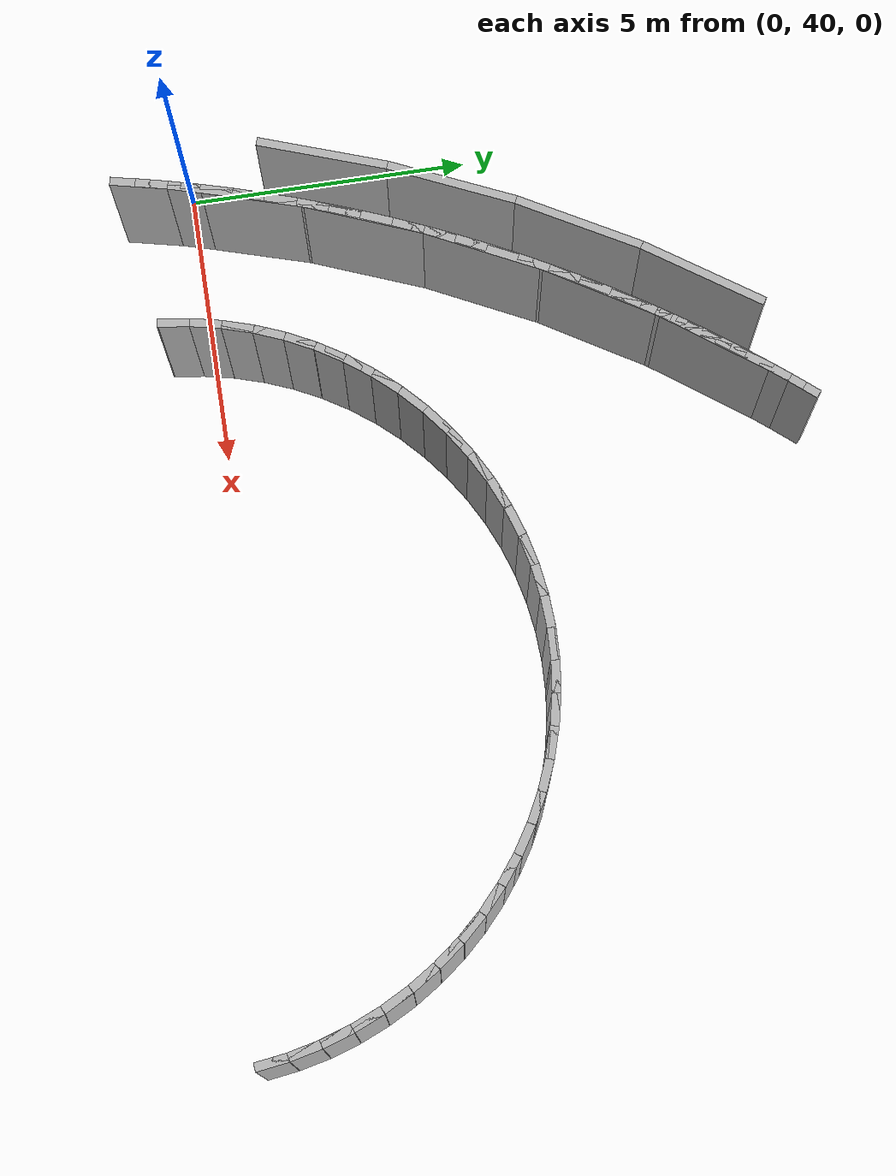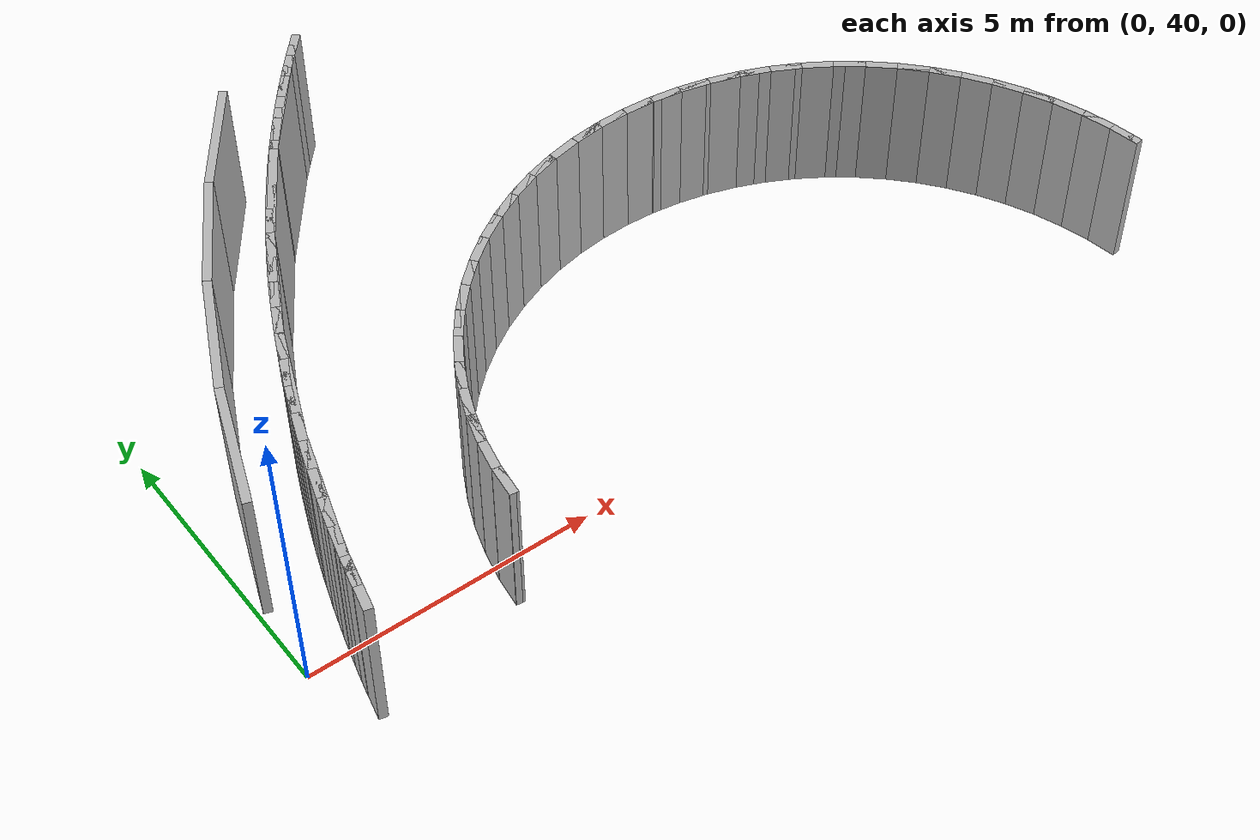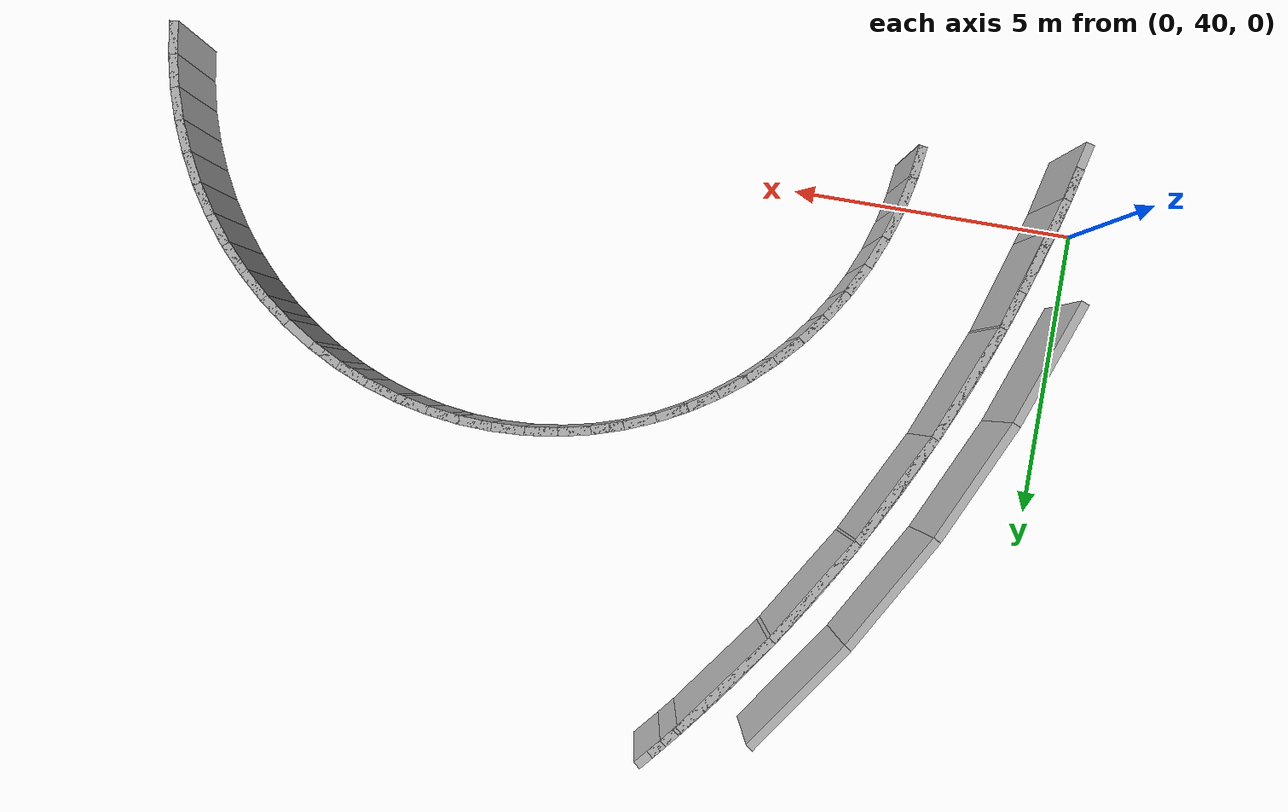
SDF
<sdf version="1.6">
 <model name="sps_2304">
  <static>1</static>
  <allow_auto_disable>0</allow_auto_disable>
  <link name="Wall5300">
   <collision name="collision"><geometry><box><size>0.549618 0.15 2.5</size></box></geometry></collision>
   <visual name="visual">
    <geometry><box><size>0.549618 0.15 2.5</size></box></geometry>
    <transparency>0.0</transparency>
   </visual>
   <pose>13.3285 43.681 1.25 0 0 -0.654517</pose>
  </link>
  <link name="Wall5301">
   <collision name="collision"><geometry><box><size>0.549667 0.15 2.5</size></box></geometry></collision>
   <visual name="visual">
    <geometry><box><size>0.549667 0.15 2.5</size></box></geometry>
    <transparency>0.0</transparency>
   </visual>
   <pose>13.7491 43.328 1.25 0 0 -0.741886</pose>
  </link>
  <link name="Wall5302">
   <collision name="collision"><geometry><box><size>0.549638 0.15 2.5</size></box></geometry></collision>
   <visual name="visual">
    <geometry><box><size>0.549638 0.15 2.5</size></box></geometry>
    <transparency>0.0</transparency>
   </visual>
   <pose>14.1373 42.9396 1.25 0 0 -0.829463</pose>
  </link>
  <link name="Wall5303">
   <collision name="collision"><geometry><box><size>0.549652 0.15 2.5</size></box></geometry></collision>
   <visual name="visual">
    <geometry><box><size>0.549652 0.15 2.5</size></box></geometry>
    <transparency>0.0</transparency>
   </visual>
   <pose>14.49 42.5188 1.25 0 0 -0.916746</pose>
  </link>
  <link name="Wall5304">
   <collision name="collision"><geometry><box><size>0.54959 0.15 2.5</size></box></geometry></collision>
   <visual name="visual">
    <geometry><box><size>0.54959 0.15 2.5</size></box></geometry>
    <transparency>0.0</transparency>
   </visual>
   <pose>14.8049 42.0689 1.25 0 0 -1.00371</pose>
  </link>
  <link name="Wall5305">
   <collision name="collision"><geometry><box><size>0.549453 0.15 2.5</size></box></geometry></collision>
   <visual name="visual">
    <geometry><box><size>0.549453 0.15 2.5</size></box></geometry>
    <transparency>0.0</transparency>
   </visual>
   <pose>15.0793 41.5934 1.25 0 0 -1.09105</pose>
  </link>
  <link name="Wall5306">
   <collision name="collision"><geometry><box><size>0.549769 0.15 2.5</size></box></geometry></collision>
   <visual name="visual">
    <geometry><box><size>0.549769 0.15 2.5</size></box></geometry>
    <transparency>0.0</transparency>
   </visual>
   <pose>15.3112 41.0957 1.25 0 0 -1.17846</pose>
  </link>
  <link name="Wall5307">
   <collision name="collision"><geometry><box><size>0.549575 0.15 2.5</size></box></geometry></collision>
   <visual name="visual">
    <geometry><box><size>0.549575 0.15 2.5</size></box></geometry>
    <transparency>0.0</transparency>
   </visual>
   <pose>15.4989 40.5796 1.25 0 0 -1.26555</pose>
  </link>
  <link name="Wall5308">
   <collision name="collision"><geometry><box><size>0.549622 0.15 2.5</size></box></geometry></collision>
   <visual name="visual">
    <geometry><box><size>0.549622 0.15 2.5</size></box></geometry>
    <transparency>0.0</transparency>
   </visual>
   <pose>15.6409 40.0492 1.25 0 0 -1.35286</pose>
  </link>
  <link name="Wall5309">
   <collision name="collision"><geometry><box><size>0.549634 0.15 2.5</size></box></geometry></collision>
   <visual name="visual">
    <geometry><box><size>0.549634 0.15 2.5</size></box></geometry>
    <transparency>0.0</transparency>
   </visual>
   <pose>15.736 39.5084 1.25 0 0 -1.44062</pose>
  </link>
  <link name="Wall5348">
   <collision name="collision"><geometry><box><size>0.549721 0.15 2.5</size></box></geometry></collision>
   <visual name="visual">
    <geometry><box><size>0.549721 0.15 2.5</size></box></geometry>
    <transparency>0.0</transparency>
   </visual>
   <pose>3.25545 39.512 1.25 0 -0 1.4394</pose>
  </link>
  <link name="Wall5349">
   <collision name="collision"><geometry><box><size>0.549423 0.15 2.5</size></box></geometry></collision>
   <visual name="visual">
    <geometry><box><size>0.549423 0.15 2.5</size></box></geometry>
    <transparency>0.0</transparency>
   </visual>
   <pose>3.35097 40.0527 1.25 0 -0 1.35244</pose>
  </link>
  <link name="Wall5350">
   <collision name="collision"><geometry><box><size>0.549688 0.15 2.5</size></box></geometry></collision>
   <visual name="visual">
    <geometry><box><size>0.549688 0.15 2.5</size></box></geometry>
    <transparency>0.0</transparency>
   </visual>
   <pose>3.49316 40.583 1.25 0 -0 1.26527</pose>
  </link>
  <link name="Wall5351">
   <collision name="collision"><geometry><box><size>0.549763 0.15 2.5</size></box></geometry></collision>
   <visual name="visual">
    <geometry><box><size>0.549763 0.15 2.5</size></box></geometry>
    <transparency>0.0</transparency>
   </visual>
   <pose>3.68114 41.099 1.25 0 -0 1.17761</pose>
  </link>
  <link name="Wall5352">
   <collision name="collision"><geometry><box><size>0.549483 0.15 2.5</size></box></geometry></collision>
   <visual name="visual">
    <geometry><box><size>0.549483 0.15 2.5</size></box></geometry>
    <transparency>0.0</transparency>
   </visual>
   <pose>3.91335 41.5966 1.25 0 -0 1.09071</pose>
  </link>
  <link name="Wall5353">
   <collision name="collision"><geometry><box><size>0.549632 0.15 2.5</size></box></geometry></collision>
   <visual name="visual">
    <geometry><box><size>0.549632 0.15 2.5</size></box></geometry>
    <transparency>0.0</transparency>
   </visual>
   <pose>4.18804 42.072 1.25 0 -0 1.00297</pose>
  </link>
  <link name="Wall5354">
   <collision name="collision"><geometry><box><size>0.549618 0.15 2.5</size></box></geometry></collision>
   <visual name="visual">
    <geometry><box><size>0.549618 0.15 2.5</size></box></geometry>
    <transparency>0.0</transparency>
   </visual>
   <pose>4.50314 42.5217 1.25 0 -0 0.916279</pose>
  </link>
  <link name="Wall5355">
   <collision name="collision"><geometry><box><size>0.549487 0.15 2.5</size></box></geometry></collision>
   <visual name="visual">
    <geometry><box><size>0.549487 0.15 2.5</size></box></geometry>
    <transparency>0.0</transparency>
   </visual>
   <pose>4.85613 42.9422 1.25 0 -0 0.82861</pose>
  </link>
  <link name="Wall5356">
   <collision name="collision"><geometry><box><size>0.549802 0.15 2.5</size></box></geometry></collision>
   <visual name="visual">
    <geometry><box><size>0.549802 0.15 2.5</size></box></geometry>
    <transparency>0.0</transparency>
   </visual>
   <pose>5.24453 43.3304 1.25 0 -0 0.741661</pose>
  </link>
  <link name="Wall5357">
   <collision name="collision"><geometry><box><size>0.549652 0.15 2.5</size></box></geometry></collision>
   <visual name="visual">
    <geometry><box><size>0.549652 0.15 2.5</size></box></geometry>
    <transparency>0.0</transparency>
   </visual>
   <pose>5.66534 43.6833 1.25 0 -0 0.65405</pose>
  </link>
  <link name="Wall5358">
   <collision name="collision"><geometry><box><size>0.549641 0.15 2.5</size></box></geometry></collision>
   <visual name="visual">
    <geometry><box><size>0.549641 0.15 2.5</size></box></geometry>
    <transparency>0.0</transparency>
   </visual>
   <pose>6.11526 43.9981 1.25 0 -0 0.567027</pose>
  </link>
  <link name="Wall5359">
   <collision name="collision"><geometry><box><size>0.549615 0.15 2.5</size></box></geometry></collision>
   <visual name="visual">
    <geometry><box><size>0.549615 0.15 2.5</size></box></geometry>
    <transparency>0.0</transparency>
   </visual>
   <pose>6.59087 44.2725 1.25 0 -0 0.47959</pose>
  </link>
  <link name="Wall5360">
   <collision name="collision"><geometry><box><size>0.549543 0.15 2.5</size></box></geometry></collision>
   <visual name="visual">
    <geometry><box><size>0.549543 0.15 2.5</size></box></geometry>
    <transparency>0.0</transparency>
   </visual>
   <pose>7.08855 44.5044 1.25 0 -0 0.39251</pose>
  </link>
  <link name="Wall5361">
   <collision name="collision"><geometry><box><size>0.549633 0.15 2.5</size></box></geometry></collision>
   <visual name="visual">
    <geometry><box><size>0.549633 0.15 2.5</size></box></geometry>
    <transparency>0.0</transparency>
   </visual>
   <pose>7.60454 44.6921 1.25 0 -0 0.30521</pose>
  </link>
  <link name="Wall5362">
   <collision name="collision"><geometry><box><size>0.549569 0.15 2.5</size></box></geometry></collision>
   <visual name="visual">
    <geometry><box><size>0.549569 0.15 2.5</size></box></geometry>
    <transparency>0.0</transparency>
   </visual>
   <pose>8.13497 44.834 1.25 0 -0 0.2175</pose>
  </link>
  <link name="Wall5363">
   <collision name="collision"><geometry><box><size>0.549673 0.15 2.5</size></box></geometry></collision>
   <visual name="visual">
    <geometry><box><size>0.549673 0.15 2.5</size></box></geometry>
    <transparency>0.0</transparency>
   </visual>
   <pose>8.67577 44.9291 1.25 0 -0 0.130732</pose>
  </link>
  <link name="Wall5364">
   <collision name="collision"><geometry><box><size>0.549527 0.15 2.5</size></box></geometry></collision>
   <visual name="visual">
    <geometry><box><size>0.549527 0.15 2.5</size></box></geometry>
    <transparency>0.0</transparency>
   </visual>
   <pose>9.22277 44.9768 1.25 0 -0 0.0433303</pose>
  </link>
  <link name="Wall5365">
   <collision name="collision"><geometry><box><size>0.549721 0.15 2.5</size></box></geometry></collision>
   <visual name="visual">
    <geometry><box><size>0.549721 0.15 2.5</size></box></geometry>
    <transparency>0.0</transparency>
   </visual>
   <pose>9.77187 44.9767 1.25 0 0 -0.0437596</pose>
  </link>
  <link name="Wall5366">
   <collision name="collision"><geometry><box><size>0.549532 0.15 2.5</size></box></geometry></collision>
   <visual name="visual">
    <geometry><box><size>0.549532 0.15 2.5</size></box></geometry>
    <transparency>0.0</transparency>
   </visual>
   <pose>10.3189 44.9287 1.25 0 0 -0.131326</pose>
  </link>
  <link name="Wall5367">
   <collision name="collision"><geometry><box><size>0.549602 0.15 2.5</size></box></geometry></collision>
   <visual name="visual">
    <geometry><box><size>0.549602 0.15 2.5</size></box></geometry>
    <transparency>0.0</transparency>
   </visual>
   <pose>10.8595 44.8332 1.25 0 0 -0.218283</pose>
  </link>
  <link name="Wall5368">
   <collision name="collision"><geometry><box><size>0.549532 0.15 2.5</size></box></geometry></collision>
   <visual name="visual">
    <geometry><box><size>0.549532 0.15 2.5</size></box></geometry>
    <transparency>0.0</transparency>
   </visual>
   <pose>11.3899 44.691 1.25 0 0 -0.305734</pose>
  </link>
  <link name="Wall5369">
   <collision name="collision"><geometry><box><size>0.549683 0.15 2.5</size></box></geometry></collision>
   <visual name="visual">
    <geometry><box><size>0.549683 0.15 2.5</size></box></geometry>
    <transparency>0.0</transparency>
   </visual>
   <pose>11.9058 44.503 1.25 0 0 -0.393126</pose>
  </link>
  <link name="Wall5370">
   <collision name="collision"><geometry><box><size>0.549565 0.15 2.5</size></box></geometry></collision>
   <visual name="visual">
    <geometry><box><size>0.549565 0.15 2.5</size></box></geometry>
    <transparency>0.0</transparency>
   </visual>
   <pose>12.4033 44.2708 1.25 0 0 -0.480138</pose>
  </link>
  <link name="Wall7865">
   <collision name="collision"><geometry><box><size>0.564432 0.15 2.5</size></box></geometry></collision>
   <visual name="visual">
    <geometry><box><size>0.564432 0.15 2.5</size></box></geometry>
    <transparency>0.0</transparency>
   </visual>
   <pose>0.658469 39.4526 1.25 0 -0 1.33327</pose>
  </link>
  <link name="Wall7866">
   <collision name="collision"><geometry><box><size>0.564522 0.15 2.5</size></box></geometry></collision>
   <visual name="visual">
    <geometry><box><size>0.564522 0.15 2.5</size></box></geometry>
    <transparency>0.0</transparency>
   </visual>
   <pose>0.797355 39.9997 1.25 0 -0 1.31111</pose>
  </link>
  <link name="Wall7867">
   <collision name="collision"><geometry><box><size>0.564337 0.15 2.5</size></box></geometry></collision>
   <visual name="visual">
    <geometry><box><size>0.564337 0.15 2.5</size></box></geometry>
    <transparency>0.0</transparency>
   </visual>
   <pose>0.948448 40.5435 1.25 0 -0 1.28846</pose>
  </link>
  <link name="Wall7868">
   <collision name="collision"><geometry><box><size>0.564536 0.15 2.5</size></box></geometry></collision>
   <visual name="visual">
    <geometry><box><size>0.564536 0.15 2.5</size></box></geometry>
    <transparency>0.0</transparency>
   </visual>
   <pose>1.11187 41.0837 1.25 0 -0 1.26563</pose>
  </link>
  <link name="Wall7869">
   <collision name="collision"><geometry><box><size>0.564544 0.15 2.5</size></box></geometry></collision>
   <visual name="visual">
    <geometry><box><size>0.564544 0.15 2.5</size></box></geometry>
    <transparency>0.0</transparency>
   </visual>
   <pose>1.28747 41.6202 1.25 0 -0 1.24334</pose>
  </link>
  <link name="Wall7870">
   <collision name="collision"><geometry><box><size>0.564453 0.15 2.5</size></box></geometry></collision>
   <visual name="visual">
    <geometry><box><size>0.564453 0.15 2.5</size></box></geometry>
    <transparency>0.0</transparency>
   </visual>
   <pose>1.47506 42.1526 1.25 0 -0 1.2207</pose>
  </link>
  <link name="Wall7871">
   <collision name="collision"><geometry><box><size>0.564506 0.15 2.5</size></box></geometry></collision>
   <visual name="visual">
    <geometry><box><size>0.564506 0.15 2.5</size></box></geometry>
    <transparency>0.0</transparency>
   </visual>
   <pose>1.67455 42.6806 1.25 0 -0 1.19842</pose>
  </link>
  <link name="Wall7872">
   <collision name="collision"><geometry><box><size>0.564439 0.15 2.5</size></box></geometry></collision>
   <visual name="visual">
    <geometry><box><size>0.564439 0.15 2.5</size></box></geometry>
    <transparency>0.0</transparency>
   </visual>
   <pose>1.88604 43.2039 1.25 0 -0 1.17505</pose>
  </link>
  <link name="Wall7873">
   <collision name="collision"><geometry><box><size>0.564359 0.15 2.5</size></box></geometry></collision>
   <visual name="visual">
    <geometry><box><size>0.564359 0.15 2.5</size></box></geometry>
    <transparency>0.0</transparency>
   </visual>
   <pose>2.10934 43.7222 1.25 0 -0 1.15297</pose>
  </link>
  <link name="Wall7874">
   <collision name="collision"><geometry><box><size>0.564515 0.15 2.5</size></box></geometry></collision>
   <visual name="visual">
    <geometry><box><size>0.564515 0.15 2.5</size></box></geometry>
    <transparency>0.0</transparency>
   </visual>
   <pose>2.34426 44.2354 1.25 0 -0 1.13002</pose>
  </link>
  <link name="Wall7875">
   <collision name="collision"><geometry><box><size>0.564367 0.15 2.5</size></box></geometry></collision>
   <visual name="visual">
    <geometry><box><size>0.564367 0.15 2.5</size></box></geometry>
    <transparency>0.0</transparency>
   </visual>
   <pose>2.59066 44.7432 1.25 0 -0 1.10802</pose>
  </link>
  <link name="Wall7876">
   <collision name="collision"><geometry><box><size>0.564695 0.15 2.5</size></box></geometry></collision>
   <visual name="visual">
    <geometry><box><size>0.564695 0.15 2.5</size></box></geometry>
    <transparency>0.0</transparency>
   </visual>
   <pose>2.84844 45.2454 1.25 0 -0 1.08511</pose>
  </link>
  <link name="Wall7877">
   <collision name="collision"><geometry><box><size>0.564353 0.15 2.5</size></box></geometry></collision>
   <visual name="visual">
    <geometry><box><size>0.564353 0.15 2.5</size></box></geometry>
    <transparency>0.0</transparency>
   </visual>
   <pose>3.11755 45.7416 1.25 0 -0 1.06264</pose>
  </link>
  <link name="Wall7878">
   <collision name="collision"><geometry><box><size>0.564472 0.15 2.5</size></box></geometry></collision>
   <visual name="visual">
    <geometry><box><size>0.564472 0.15 2.5</size></box></geometry>
    <transparency>0.0</transparency>
   </visual>
   <pose>3.39776 46.2315 1.25 0 -0 1.03983</pose>
  </link>
  <link name="Wall7879">
   <collision name="collision"><geometry><box><size>0.564419 0.15 2.5</size></box></geometry></collision>
   <visual name="visual">
    <geometry><box><size>0.564419 0.15 2.5</size></box></geometry>
    <transparency>0.0</transparency>
   </visual>
   <pose>3.68896 46.715 1.25 0 -0 1.01756</pose>
  </link>
  <link name="Wall7880">
   <collision name="collision"><geometry><box><size>0.564458 0.15 2.5</size></box></geometry></collision>
   <visual name="visual">
    <geometry><box><size>0.564458 0.15 2.5</size></box></geometry>
    <transparency>0.0</transparency>
   </visual>
   <pose>3.99096 47.1918 1.25 0 -0 0.99482</pose>
  </link>
  <link name="Wall7881">
   <collision name="collision"><geometry><box><size>0.282279 0.15 2.5</size></box></geometry></collision>
   <visual name="visual">
    <geometry><box><size>0.282279 0.15 2.5</size></box></geometry>
    <transparency>0.0</transparency>
   </visual>
   <pose>4.22347 47.5456 1.25 0 -0 0.978476</pose>
  </link>
  <link name="Wall7882">
   <collision name="collision"><geometry><box><size>0.282247 0.15 2.5</size></box></geometry></collision>
   <visual name="visual">
    <geometry><box><size>0.282247 0.15 2.5</size></box></geometry>
    <transparency>0.0</transparency>
   </visual>
   <pose>4.38247 47.7788 1.25 0 -0 0.966359</pose>
  </link>
  <link name="Wall7883">
   <collision name="collision"><geometry><box><size>0.282364 0.15 2.5</size></box></geometry></collision>
   <visual name="visual">
    <geometry><box><size>0.282364 0.15 2.5</size></box></geometry>
    <transparency>0.0</transparency>
   </visual>
   <pose>4.54415 48.0102 1.25 0 -0 0.955572</pose>
  </link>
  <link name="Wall7884">
   <collision name="collision"><geometry><box><size>0.281997 0.15 2.5</size></box></geometry></collision>
   <visual name="visual">
    <geometry><box><size>0.281997 0.15 2.5</size></box></geometry>
    <transparency>0.0</transparency>
   </visual>
   <pose>4.70834 48.2397 1.25 0 -0 0.944005</pose>
  </link>
  <link name="Wall7885">
   <collision name="collision"><geometry><box><size>0.28223 0.15 2.5</size></box></geometry></collision>
   <visual name="visual">
    <geometry><box><size>0.28223 0.15 2.5</size></box></geometry>
    <transparency>0.0</transparency>
   </visual>
   <pose>4.87514 48.4672 1.25 0 -0 0.932269</pose>
  </link>
  <link name="Wall7886">
   <collision name="collision"><geometry><box><size>0.282194 0.15 2.5</size></box></geometry></collision>
   <visual name="visual">
    <geometry><box><size>0.282194 0.15 2.5</size></box></geometry>
    <transparency>0.0</transparency>
   </visual>
   <pose>5.04455 48.6929 1.25 0 -0 0.921628</pose>
  </link>
  <link name="Wall7887">
   <collision name="collision"><geometry><box><size>0.282341 0.15 2.5</size></box></geometry></collision>
   <visual name="visual">
    <geometry><box><size>0.282341 0.15 2.5</size></box></geometry>
    <transparency>0.0</transparency>
   </visual>
   <pose>5.21645 48.9168 1.25 0 -0 0.910303</pose>
  </link>
  <link name="Wall7888">
   <collision name="collision"><geometry><box><size>0.282246 0.15 2.5</size></box></geometry></collision>
   <visual name="visual">
    <geometry><box><size>0.282246 0.15 2.5</size></box></geometry>
    <transparency>0.0</transparency>
   </visual>
   <pose>5.39095 49.1387 1.25 0 -0 0.898487</pose>
  </link>
  <link name="Wall7889">
   <collision name="collision"><geometry><box><size>0.28235 0.15 2.5</size></box></geometry></collision>
   <visual name="visual">
    <geometry><box><size>0.28235 0.15 2.5</size></box></geometry>
    <transparency>0.0</transparency>
   </visual>
   <pose>5.56795 49.3586 1.25 0 -0 0.887683</pose>
  </link>
  <link name="Wall7890">
   <collision name="collision"><geometry><box><size>0.282167 0.15 2.5</size></box></geometry></collision>
   <visual name="visual">
    <geometry><box><size>0.282167 0.15 2.5</size></box></geometry>
    <transparency>0.0</transparency>
   </visual>
   <pose>5.74737 49.5765 1.25 0 -0 0.876224</pose>
  </link>
  <link name="Wall7891">
   <collision name="collision"><geometry><box><size>0.28216 0.15 2.5</size></box></geometry></collision>
   <visual name="visual">
    <geometry><box><size>0.28216 0.15 2.5</size></box></geometry>
    <transparency>0.0</transparency>
   </visual>
   <pose>5.92916 49.7923 1.25 0 -0 0.865173</pose>
  </link>
  <link name="Wall13183">
   <collision name="collision"><geometry><box><size>1.6931 0.15 2.5</size></box></geometry></collision>
   <visual name="visual">
    <geometry><box><size>1.6931 0.15 2.5</size></box></geometry>
    <transparency>0.0</transparency>
   </visual>
   <pose>0.960777 40.5399 1.25 0 0 -1.8532</pose>
  </link>
  <link name="Wall13184">
   <collision name="collision"><geometry><box><size>1.00406 0.15 2.5</size></box></geometry></collision>
   <visual name="visual">
    <geometry><box><size>1.00406 0.15 2.5</size></box></geometry>
    <transparency>0.0</transparency>
   </visual>
   <pose>0.611167 39.2379 1.25 0 0 -1.79928</pose>
  </link>
  <link name="Wall19328">
   <collision name="collision"><geometry><box><size>0.549665 0.15 2.5</size></box></geometry></collision>
   <visual name="visual">
    <geometry><box><size>0.549665 0.15 2.5</size></box></geometry>
    <transparency>0.0</transparency>
   </visual>
   <pose>15.7358 39.5086 1.25 0 -0 1.70142</pose>
  </link>
  <link name="Wall19329">
   <collision name="collision"><geometry><box><size>0.549609 0.15 2.5</size></box></geometry></collision>
   <visual name="visual">
    <geometry><box><size>0.549609 0.15 2.5</size></box></geometry>
    <transparency>0.0</transparency>
   </visual>
   <pose>15.6406 40.0494 1.25 0 -0 1.78862</pose>
  </link>
  <link name="Wall19330">
   <collision name="collision"><geometry><box><size>0.549593 0.15 2.5</size></box></geometry></collision>
   <visual name="visual">
    <geometry><box><size>0.549593 0.15 2.5</size></box></geometry>
    <transparency>0.0</transparency>
   </visual>
   <pose>15.4986 40.5798 1.25 0 -0 1.87615</pose>
  </link>
  <link name="Wall19331">
   <collision name="collision"><geometry><box><size>0.5496 0.15 2.5</size></box></geometry></collision>
   <visual name="visual">
    <geometry><box><size>0.5496 0.15 2.5</size></box></geometry>
    <transparency>0.0</transparency>
   </visual>
   <pose>15.3109 41.0958 1.25 0 -0 1.96326</pose>
  </link>
  <link name="Wall19332">
   <collision name="collision"><geometry><box><size>0.549615 0.15 2.5</size></box></geometry></collision>
   <visual name="visual">
    <geometry><box><size>0.549615 0.15 2.5</size></box></geometry>
    <transparency>0.0</transparency>
   </visual>
   <pose>15.079 41.5935 1.25 0 -0 2.05039</pose>
  </link>
  <link name="Wall19333">
   <collision name="collision"><geometry><box><size>0.549608 0.15 2.5</size></box></geometry></collision>
   <visual name="visual">
    <geometry><box><size>0.549608 0.15 2.5</size></box></geometry>
    <transparency>0.0</transparency>
   </visual>
   <pose>14.8046 42.0691 1.25 0 -0 2.13773</pose>
  </link>
  <link name="Wall19334">
   <collision name="collision"><geometry><box><size>0.549604 0.15 2.5</size></box></geometry></collision>
   <visual name="visual">
    <geometry><box><size>0.549604 0.15 2.5</size></box></geometry>
    <transparency>0.0</transparency>
   </visual>
   <pose>14.4899 42.519 1.25 0 -0 2.22491</pose>
  </link>
  <link name="Wall19335">
   <collision name="collision"><geometry><box><size>0.549544 0.15 2.5</size></box></geometry></collision>
   <visual name="visual">
    <geometry><box><size>0.549544 0.15 2.5</size></box></geometry>
    <transparency>0.0</transparency>
   </visual>
   <pose>14.137 42.9397 1.25 0 -0 2.31244</pose>
  </link>
  <link name="Wall19336">
   <collision name="collision"><geometry><box><size>0.549667 0.15 2.5</size></box></geometry></collision>
   <visual name="visual">
    <geometry><box><size>0.549667 0.15 2.5</size></box></geometry>
    <transparency>0.0</transparency>
   </visual>
   <pose>13.7488 43.328 1.25 0 -0 2.39971</pose>
  </link>
  <link name="Wall19337">
   <collision name="collision"><geometry><box><size>0.549536 0.15 2.5</size></box></geometry></collision>
   <visual name="visual">
    <geometry><box><size>0.549536 0.15 2.5</size></box></geometry>
    <transparency>0.0</transparency>
   </visual>
   <pose>13.3283 43.6811 1.25 0 -0 2.48654</pose>
  </link>
  <link name="Wall19338">
   <collision name="collision"><geometry><box><size>0.549688 0.15 2.5</size></box></geometry></collision>
   <visual name="visual">
    <geometry><box><size>0.549688 0.15 2.5</size></box></geometry>
    <transparency>0.0</transparency>
   </visual>
   <pose>12.8787 43.9962 1.25 0 -0 2.57422</pose>
  </link>
  <link name="Wall19339">
   <collision name="collision"><geometry><box><size>0.54965 0.15 2.5</size></box></geometry></collision>
   <visual name="visual">
    <geometry><box><size>0.54965 0.15 2.5</size></box></geometry>
    <transparency>0.0</transparency>
   </visual>
   <pose>12.4032 44.2709 1.25 0 -0 2.66116</pose>
  </link>
  <link name="Wall19340">
   <collision name="collision"><geometry><box><size>0.54967 0.15 2.5</size></box></geometry></collision>
   <visual name="visual">
    <geometry><box><size>0.54967 0.15 2.5</size></box></geometry>
    <transparency>0.0</transparency>
   </visual>
   <pose>11.9055 44.5031 1.25 0 -0 2.74882</pose>
  </link>
  <link name="Wall19341">
   <collision name="collision"><geometry><box><size>0.549473 0.15 2.5</size></box></geometry></collision>
   <visual name="visual">
    <geometry><box><size>0.549473 0.15 2.5</size></box></geometry>
    <transparency>0.0</transparency>
   </visual>
   <pose>11.3896 44.691 1.25 0 -0 2.83583</pose>
  </link>
  <link name="Wall19342">
   <collision name="collision"><geometry><box><size>0.549701 0.15 2.5</size></box></geometry></collision>
   <visual name="visual">
    <geometry><box><size>0.549701 0.15 2.5</size></box></geometry>
    <transparency>0.0</transparency>
   </visual>
   <pose>10.8593 44.8333 1.25 0 -0 2.92301</pose>
  </link>
  <link name="Wall19343">
   <collision name="collision"><geometry><box><size>0.549689 0.15 2.5</size></box></geometry></collision>
   <visual name="visual">
    <geometry><box><size>0.549689 0.15 2.5</size></box></geometry>
    <transparency>0.0</transparency>
   </visual>
   <pose>10.3185 44.9288 1.25 0 -0 3.01064</pose>
  </link>
  <link name="Wall19344">
   <collision name="collision"><geometry><box><size>0.549546 0.15 2.5</size></box></geometry></collision>
   <visual name="visual">
    <geometry><box><size>0.549546 0.15 2.5</size></box></geometry>
    <transparency>0.0</transparency>
   </visual>
   <pose>9.77154 44.9768 1.25 0 -0 3.09749</pose>
  </link>
  <link name="Wall19345">
   <collision name="collision"><geometry><box><size>0.549474 0.15 2.5</size></box></geometry></collision>
   <visual name="visual">
    <geometry><box><size>0.549474 0.15 2.5</size></box></geometry>
    <transparency>0.0</transparency>
   </visual>
   <pose>9.22256 44.9769 1.25 0 0 -3.09792</pose>
  </link>
  <link name="Wall19346">
   <collision name="collision"><geometry><box><size>0.549734 0.15 2.5</size></box></geometry></collision>
   <visual name="visual">
    <geometry><box><size>0.549734 0.15 2.5</size></box></geometry>
    <transparency>0.0</transparency>
   </visual>
   <pose>8.67556 44.9291 1.25 0 0 -3.01088</pose>
  </link>
  <link name="Wall19347">
   <collision name="collision"><geometry><box><size>0.549509 0.15 2.5</size></box></geometry></collision>
   <visual name="visual">
    <geometry><box><size>0.549509 0.15 2.5</size></box></geometry>
    <transparency>0.0</transparency>
   </visual>
   <pose>8.13476 44.834 1.25 0 0 -2.92407</pose>
  </link>
  <link name="Wall19348">
   <collision name="collision"><geometry><box><size>0.549633 0.15 2.5</size></box></geometry></collision>
   <visual name="visual">
    <geometry><box><size>0.549633 0.15 2.5</size></box></geometry>
    <transparency>0.0</transparency>
   </visual>
   <pose>7.60436 44.6921 1.25 0 0 -2.83638</pose>
  </link>
  <link name="Wall19349">
   <collision name="collision"><geometry><box><size>0.5496 0.15 2.5</size></box></geometry></collision>
   <visual name="visual">
    <geometry><box><size>0.5496 0.15 2.5</size></box></geometry>
    <transparency>0.0</transparency>
   </visual>
   <pose>7.08834 44.5044 1.25 0 0 -2.74913</pose>
  </link>
  <link name="Wall19350">
   <collision name="collision"><geometry><box><size>0.549561 0.15 2.5</size></box></geometry></collision>
   <visual name="visual">
    <geometry><box><size>0.549561 0.15 2.5</size></box></geometry>
    <transparency>0.0</transparency>
   </visual>
   <pose>6.59066 44.2725 1.25 0 0 -2.66195</pose>
  </link>
  <link name="Wall19351">
   <collision name="collision"><geometry><box><size>0.549641 0.15 2.5</size></box></geometry></collision>
   <visual name="visual">
    <geometry><box><size>0.549641 0.15 2.5</size></box></geometry>
    <transparency>0.0</transparency>
   </visual>
   <pose>6.11507 43.9981 1.25 0 0 -2.57457</pose>
  </link>
  <link name="Wall19352">
   <collision name="collision"><geometry><box><size>0.549652 0.15 2.5</size></box></geometry></collision>
   <visual name="visual">
    <geometry><box><size>0.549652 0.15 2.5</size></box></geometry>
    <transparency>0.0</transparency>
   </visual>
   <pose>5.66515 43.6833 1.25 0 0 -2.48754</pose>
  </link>
  <link name="Wall19353">
   <collision name="collision"><geometry><box><size>0.549802 0.15 2.5</size></box></geometry></collision>
   <visual name="visual">
    <geometry><box><size>0.549802 0.15 2.5</size></box></geometry>
    <transparency>0.0</transparency>
   </visual>
   <pose>5.24435 43.3304 1.25 0 0 -2.39993</pose>
  </link>
  <link name="Wall19354">
   <collision name="collision"><geometry><box><size>0.549487 0.15 2.5</size></box></geometry></collision>
   <visual name="visual">
    <geometry><box><size>0.549487 0.15 2.5</size></box></geometry>
    <transparency>0.0</transparency>
   </visual>
   <pose>4.85595 42.9422 1.25 0 0 -2.31298</pose>
  </link>
  <link name="Wall19355">
   <collision name="collision"><geometry><box><size>0.549618 0.15 2.5</size></box></geometry></collision>
   <visual name="visual">
    <geometry><box><size>0.549618 0.15 2.5</size></box></geometry>
    <transparency>0.0</transparency>
   </visual>
   <pose>4.50295 42.5217 1.25 0 0 -2.22531</pose>
  </link>
  <link name="Wall19356">
   <collision name="collision"><geometry><box><size>0.549534 0.15 2.5</size></box></geometry></collision>
   <visual name="visual">
    <geometry><box><size>0.549534 0.15 2.5</size></box></geometry>
    <transparency>0.0</transparency>
   </visual>
   <pose>4.18795 42.072 1.25 0 0 -2.13834</pose>
  </link>
  <link name="Wall19357">
   <collision name="collision"><geometry><box><size>0.549784 0.15 2.5</size></box></geometry></collision>
   <visual name="visual">
    <geometry><box><size>0.549784 0.15 2.5</size></box></geometry>
    <transparency>0.0</transparency>
   </visual>
   <pose>3.91326 41.5965 1.25 0 0 -2.05098</pose>
  </link>
  <link name="Wall19358">
   <collision name="collision"><geometry><box><size>0.549538 0.15 2.5</size></box></geometry></collision>
   <visual name="visual">
    <geometry><box><size>0.549538 0.15 2.5</size></box></geometry>
    <transparency>0.0</transparency>
   </visual>
   <pose>3.68096 41.0989 1.25 0 0 -1.96415</pose>
  </link>
  <link name="Wall19359">
   <collision name="collision"><geometry><box><size>0.549706 0.15 2.5</size></box></geometry></collision>
   <visual name="visual">
    <geometry><box><size>0.549706 0.15 2.5</size></box></geometry>
    <transparency>0.0</transparency>
   </visual>
   <pose>3.49294 40.583 1.25 0 0 -1.87643</pose>
  </link>
  <link name="Wall19360">
   <collision name="collision"><geometry><box><size>0.549589 0.15 2.5</size></box></geometry></collision>
   <visual name="visual">
    <geometry><box><size>0.549589 0.15 2.5</size></box></geometry>
    <transparency>0.0</transparency>
   </visual>
   <pose>3.35076 40.0526 1.25 0 0 -1.78897</pose>
  </link>
  <link name="Wall19361">
   <collision name="collision"><geometry><box><size>0.549516 0.15 2.5</size></box></geometry></collision>
   <visual name="visual">
    <geometry><box><size>0.549516 0.15 2.5</size></box></geometry>
    <transparency>0.0</transparency>
   </visual>
   <pose>3.25536 39.5119 1.25 0 0 -1.7019</pose>
  </link>
  <link name="Wall23949">
   <collision name="collision"><geometry><box><size>2.14451 0.15 2.5</size></box></geometry></collision>
   <visual name="visual">
    <geometry><box><size>2.14451 0.15 2.5</size></box></geometry>
    <transparency>0.0</transparency>
   </visual>
   <pose>4.97756 48.5668 1.25 0 0 -2.21446</pose>
  </link>
  <link name="Wall23950">
   <collision name="collision"><geometry><box><size>2.14434 0.15 2.5</size></box></geometry></collision>
   <visual name="visual">
    <geometry><box><size>2.14434 0.15 2.5</size></box></geometry>
    <transparency>0.0</transparency>
   </visual>
   <pose>3.76647 46.7995 1.25 0 0 -2.12868</pose>
  </link>
  <link name="Wall23951">
   <collision name="collision"><geometry><box><size>2.14429 0.15 2.5</size></box></geometry></collision>
   <visual name="visual">
    <geometry><box><size>2.14429 0.15 2.5</size></box></geometry>
    <transparency>0.0</transparency>
   </visual>
   <pose>2.71136 44.935 1.25 0 0 -2.04285</pose>
  </link>
  <link name="Wall23952">
   <collision name="collision"><geometry><box><size>2.14442 0.15 2.5</size></box></geometry></collision>
   <visual name="visual">
    <geometry><box><size>2.14442 0.15 2.5</size></box></geometry>
    <transparency>0.0</transparency>
   </visual>
   <pose>1.81994 42.9869 1.25 0 0 -1.95703</pose>
  </link>
  <link name="Wall23953">
   <collision name="collision"><geometry><box><size>2.14427 0.15 2.5</size></box></geometry></collision>
   <visual name="visual">
    <geometry><box><size>2.14427 0.15 2.5</size></box></geometry>
    <transparency>0.0</transparency>
   </visual>
   <pose>1.09866 40.9696 1.25 0 0 -1.87133</pose>
  </link>
  <link name="Wall28942">
   <collision name="collision"><geometry><box><size>0.564426 0.15 2.5</size></box></geometry></collision>
   <visual name="visual">
    <geometry><box><size>0.564426 0.15 2.5</size></box></geometry>
    <transparency>0.0</transparency>
   </visual>
   <pose>6.02187 49.8987 1.25 0 0 -2.28196</pose>
  </link>
  <link name="Wall28943">
   <collision name="collision"><geometry><box><size>0.564508 0.15 2.5</size></box></geometry></collision>
   <visual name="visual">
    <geometry><box><size>0.564508 0.15 2.5</size></box></geometry>
    <transparency>0.0</transparency>
   </visual>
   <pose>5.65826 49.467 1.25 0 0 -2.25964</pose>
  </link>
  <link name="Wall28944">
   <collision name="collision"><geometry><box><size>0.564577 0.15 2.5</size></box></geometry></collision>
   <visual name="visual">
    <geometry><box><size>0.564577 0.15 2.5</size></box></geometry>
    <transparency>0.0</transparency>
   </visual>
   <pose>5.30434 49.0272 1.25 0 0 -2.2372</pose>
  </link>
  <link name="Wall28945">
   <collision name="collision"><geometry><box><size>0.564417 0.15 2.5</size></box></geometry></collision>
   <visual name="visual">
    <geometry><box><size>0.564417 0.15 2.5</size></box></geometry>
    <transparency>0.0</transparency>
   </visual>
   <pose>4.96044 48.5796 1.25 0 0 -2.21464</pose>
  </link>
  <link name="Wall28946">
   <collision name="collision"><geometry><box><size>0.56455 0.15 2.5</size></box></geometry></collision>
   <visual name="visual">
    <geometry><box><size>0.56455 0.15 2.5</size></box></geometry>
    <transparency>0.0</transparency>
   </visual>
   <pose>4.62685 48.1243 1.25 0 0 -2.19155</pose>
  </link>
  <link name="Wall28947">
   <collision name="collision"><geometry><box><size>0.564313 0.15 2.5</size></box></geometry></collision>
   <visual name="visual">
    <geometry><box><size>0.564313 0.15 2.5</size></box></geometry>
    <transparency>0.0</transparency>
   </visual>
   <pose>4.30367 47.6616 1.25 0 0 -2.16942</pose>
  </link>
  <link name="Wall28948">
   <collision name="collision"><geometry><box><size>0.564458 0.15 2.5</size></box></geometry></collision>
   <visual name="visual">
    <geometry><box><size>0.564458 0.15 2.5</size></box></geometry>
    <transparency>0.0</transparency>
   </visual>
   <pose>3.99096 47.1918 1.25 0 0 -2.14677</pose>
  </link>
  <link name="Wall28949">
   <collision name="collision"><geometry><box><size>0.564419 0.15 2.5</size></box></geometry></collision>
   <visual name="visual">
    <geometry><box><size>0.564419 0.15 2.5</size></box></geometry>
    <transparency>0.0</transparency>
   </visual>
   <pose>3.68896 46.715 1.25 0 0 -2.12403</pose>
  </link>
  <link name="Wall28950">
   <collision name="collision"><geometry><box><size>0.564472 0.15 2.5</size></box></geometry></collision>
   <visual name="visual">
    <geometry><box><size>0.564472 0.15 2.5</size></box></geometry>
    <transparency>0.0</transparency>
   </visual>
   <pose>3.39776 46.2315 1.25 0 0 -2.10176</pose>
  </link>
  <link name="Wall28951">
   <collision name="collision"><geometry><box><size>0.564353 0.15 2.5</size></box></geometry></collision>
   <visual name="visual">
    <geometry><box><size>0.564353 0.15 2.5</size></box></geometry>
    <transparency>0.0</transparency>
   </visual>
   <pose>3.11755 45.7416 1.25 0 0 -2.07896</pose>
  </link>
  <link name="Wall28952">
   <collision name="collision"><geometry><box><size>0.564695 0.15 2.5</size></box></geometry></collision>
   <visual name="visual">
    <geometry><box><size>0.564695 0.15 2.5</size></box></geometry>
    <transparency>0.0</transparency>
   </visual>
   <pose>2.84844 45.2454 1.25 0 0 -2.05649</pose>
  </link>
  <link name="Wall28953">
   <collision name="collision"><geometry><box><size>0.564367 0.15 2.5</size></box></geometry></collision>
   <visual name="visual">
    <geometry><box><size>0.564367 0.15 2.5</size></box></geometry>
    <transparency>0.0</transparency>
   </visual>
   <pose>2.59066 44.7432 1.25 0 0 -2.03357</pose>
  </link>
  <link name="Wall28954">
   <collision name="collision"><geometry><box><size>0.564515 0.15 2.5</size></box></geometry></collision>
   <visual name="visual">
    <geometry><box><size>0.564515 0.15 2.5</size></box></geometry>
    <transparency>0.0</transparency>
   </visual>
   <pose>2.34426 44.2354 1.25 0 0 -2.01157</pose>
  </link>
  <link name="Wall28955">
   <collision name="collision"><geometry><box><size>0.564359 0.15 2.5</size></box></geometry></collision>
   <visual name="visual">
    <geometry><box><size>0.564359 0.15 2.5</size></box></geometry>
    <transparency>0.0</transparency>
   </visual>
   <pose>2.10934 43.7222 1.25 0 0 -1.98863</pose>
  </link>
  <link name="Wall28956">
   <collision name="collision"><geometry><box><size>0.564439 0.15 2.5</size></box></geometry></collision>
   <visual name="visual">
    <geometry><box><size>0.564439 0.15 2.5</size></box></geometry>
    <transparency>0.0</transparency>
   </visual>
   <pose>1.88604 43.2039 1.25 0 0 -1.96654</pose>
  </link>
  <link name="Wall28957">
   <collision name="collision"><geometry><box><size>0.564506 0.15 2.5</size></box></geometry></collision>
   <visual name="visual">
    <geometry><box><size>0.564506 0.15 2.5</size></box></geometry>
    <transparency>0.0</transparency>
   </visual>
   <pose>1.67455 42.6806 1.25 0 0 -1.94317</pose>
  </link>
  <link name="Wall28958">
   <collision name="collision"><geometry><box><size>0.564453 0.15 2.5</size></box></geometry></collision>
   <visual name="visual">
    <geometry><box><size>0.564453 0.15 2.5</size></box></geometry>
    <transparency>0.0</transparency>
   </visual>
   <pose>1.47506 42.1526 1.25 0 0 -1.9209</pose>
  </link>
  <link name="Wall28959">
   <collision name="collision"><geometry><box><size>0.564544 0.15 2.5</size></box></geometry></collision>
   <visual name="visual">
    <geometry><box><size>0.564544 0.15 2.5</size></box></geometry>
    <transparency>0.0</transparency>
   </visual>
   <pose>1.28747 41.6202 1.25 0 0 -1.89826</pose>
  </link>
  <link name="Wall28960">
   <collision name="collision"><geometry><box><size>0.564536 0.15 2.5</size></box></geometry></collision>
   <visual name="visual">
    <geometry><box><size>0.564536 0.15 2.5</size></box></geometry>
    <transparency>0.0</transparency>
   </visual>
   <pose>1.11187 41.0837 1.25 0 0 -1.87596</pose>
  </link>
  <link name="Wall28961">
   <collision name="collision"><geometry><box><size>0.564337 0.15 2.5</size></box></geometry></collision>
   <visual name="visual">
    <geometry><box><size>0.564337 0.15 2.5</size></box></geometry>
    <transparency>0.0</transparency>
   </visual>
   <pose>0.948448 40.5435 1.25 0 0 -1.85314</pose>
  </link>
  <link name="Wall28962">
   <collision name="collision"><geometry><box><size>0.564522 0.15 2.5</size></box></geometry></collision>
   <visual name="visual">
    <geometry><box><size>0.564522 0.15 2.5</size></box></geometry>
    <transparency>0.0</transparency>
   </visual>
   <pose>0.797355 39.9997 1.25 0 0 -1.83049</pose>
  </link>
  <link name="Wall28963">
   <collision name="collision"><geometry><box><size>0.564432 0.15 2.5</size></box></geometry></collision>
   <visual name="visual">
    <geometry><box><size>0.564432 0.15 2.5</size></box></geometry>
    <transparency>0.0</transparency>
   </visual>
   <pose>0.658469 39.4526 1.25 0 0 -1.80833</pose>
  </link>
  <link name="Wall36640">
   <collision name="collision"><geometry><box><size>2.31548 0.15 2.5</size></box></geometry></collision>
   <visual name="visual">
    <geometry><box><size>2.31548 0.15 2.5</size></box></geometry>
    <transparency>0.0</transparency>
   </visual>
   <pose>3.74996 48.5753 1.25 0 0 -2.18638</pose>
  </link>
  <link name="Wall36641">
   <collision name="collision"><geometry><box><size>2.31529 0.15 2.5</size></box></geometry></collision>
   <visual name="visual">
    <geometry><box><size>2.31529 0.15 2.5</size></box></geometry>
    <transparency>0.0</transparency>
   </visual>
   <pose>2.49975 46.6292 1.25 0 0 -2.09726</pose>
  </link>
  <link name="Wall36642">
   <collision name="collision"><geometry><box><size>2.3154 0.15 2.5</size></box></geometry></collision>
   <visual name="visual">
    <geometry><box><size>2.3154 0.15 2.5</size></box></geometry>
    <transparency>0.0</transparency>
   </visual>
   <pose>1.42767 44.5796 1.25 0 0 -2.0082</pose>
  </link>
  <link name="Wall36643">
   <collision name="collision"><geometry><box><size>2.31541 0.15 2.5</size></box></geometry></collision>
   <visual name="visual">
    <geometry><box><size>2.31541 0.15 2.5</size></box></geometry>
    <transparency>0.0</transparency>
   </visual>
   <pose>0.542167 42.4427 1.25 0 0 -1.91908</pose>
  </link>
 </model>
</sdf>
